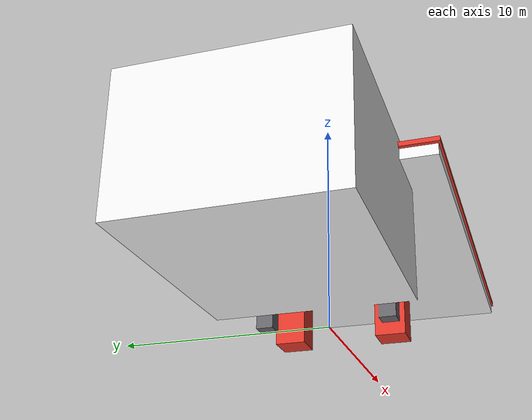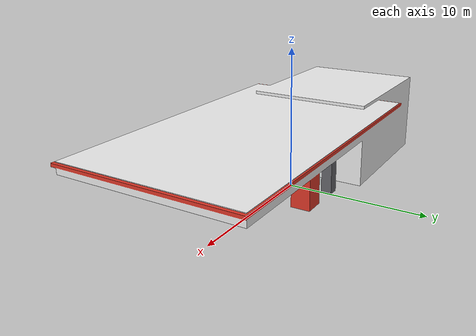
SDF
<?xml version="1.0" ?>
<sdf version="1.5">
  <model name="Gas Station">
    <static>true</static>
    <link name="link">
      <pose>0 0 0 0 0 0</pose>
      <collision name="collision">
        <geometry>
          <mesh>
            <uri>model://gas_station/meshes/gas_station.dae</uri>
          </mesh>
          <scale>2 2 1.5</scale>
        </geometry>
      </collision>
      <visual name="visual">
        <geometry>
          <mesh>
            <uri>model://gas_station/meshes/gas_station.dae</uri>
            <scale>2 2 1.5</scale>
          </mesh>
        </geometry>
        <material>
          <script>
            <uri>model://gas_station/materials/scripts</uri>
            <uri>model://gas_station/materials/textures</uri>
            <name>GasStation/Diffuse</name>
          </script>
          <shader type="normal_map_tangent_space">
            <normal_map>GasStation_Normal.png</normal_map>
          </shader>
        </material>
      </visual>
    </link>
  </model>
</sdf>
